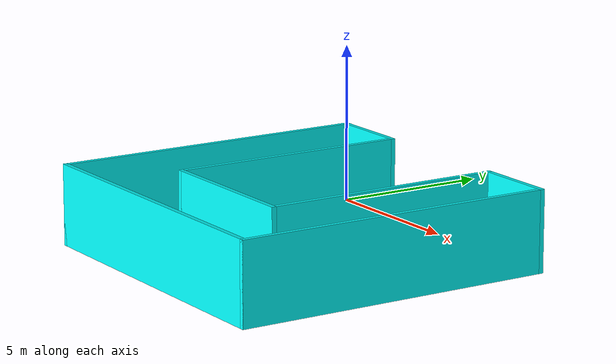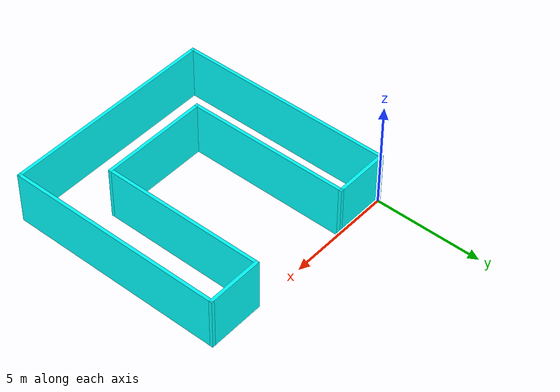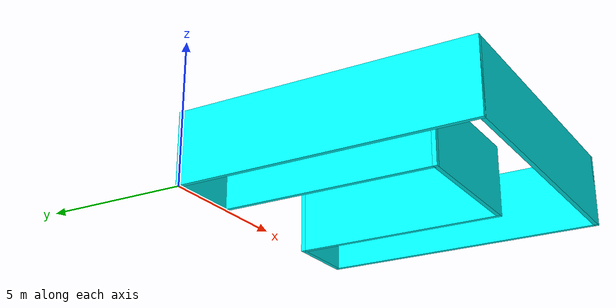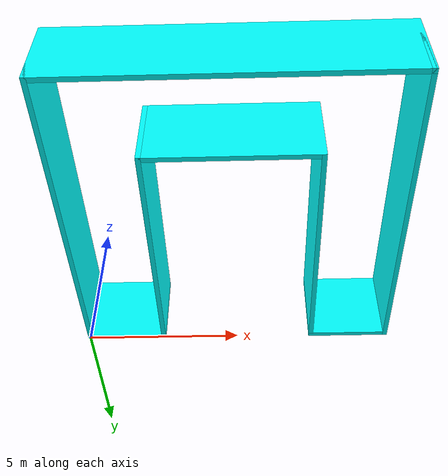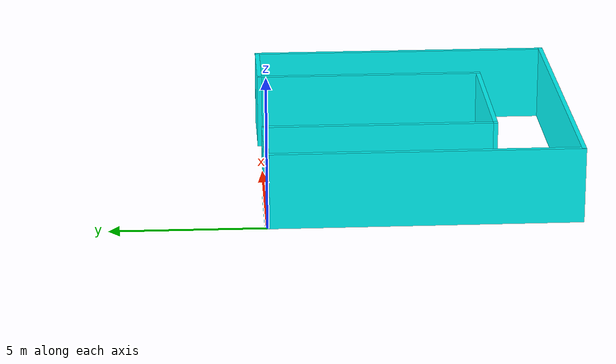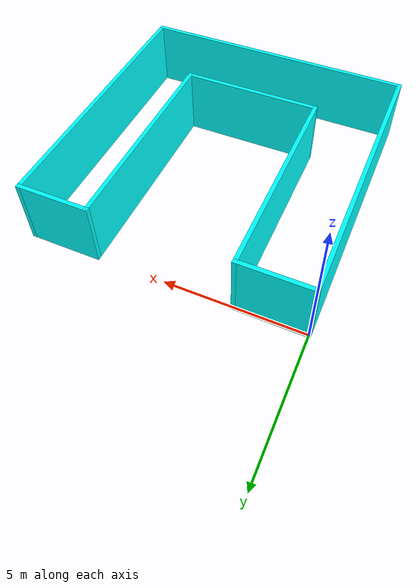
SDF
<?xml version='1.0'?>
<sdf version='1.6'>
  <model name='world'>
    <pose frame=''>5 -5 0 0 -0 0</pose>
    <link name='Wall_0'>
      <collision name='Wall_0_Collision'>
        <geometry>
          <box>
            <size>10.15 0.15 2.5</size>
          </box>
        </geometry>
        <pose frame=''>0 0 1.25 0 -0 0</pose>
      </collision>
      <visual name='Wall_0_Visual'>
        <pose frame=''>0 0 1.25 0 -0 0</pose>
        <geometry>
          <box>
            <size>10.15 0.15 2.5</size>
          </box>
        </geometry>
        <material>
          <script>
            <uri>file://media/materials/scripts/gazebo.material</uri>
            <name>Gazebo/Grey</name>
          </script>
          <ambient>0 1 1 1</ambient>
        </material>
      </visual>
      <pose frame=''>-5 0 0 0 0 -1.5708</pose>
    </link>
    <link name='Wall_2'>
      <collision name='Wall_2_Collision'>
        <geometry>
          <box>
            <size>10.15 0.15 2.5</size>
          </box>
        </geometry>
        <pose frame=''>0 0 1.25 0 -0 0</pose>
      </collision>
      <visual name='Wall_2_Visual'>
        <pose frame=''>0 0 1.25 0 -0 0</pose>
        <geometry>
          <box>
            <size>10.15 0.15 2.5</size>
          </box>
        </geometry>
        <material>
          <script>
            <uri>file://media/materials/scripts/gazebo.material</uri>
            <name>Gazebo/Grey</name>
          </script>
          <ambient>0 1 1 1</ambient>
        </material>
      </visual>
      <pose frame=''>0 -5 0 0 -0 0</pose>
    </link>
    <link name='Wall_3'>
      <collision name='Wall_3_Collision'>
        <geometry>
          <box>
            <size>10.15 0.15 2.5</size>
          </box>
        </geometry>
        <pose frame=''>0 0 1.25 0 -0 0</pose>
      </collision>
      <visual name='Wall_3_Visual'>
        <pose frame=''>0 0 1.25 0 -0 0</pose>
        <geometry>
          <box>
            <size>10.15 0.15 2.5</size>
          </box>
        </geometry>
        <material>
          <script>
            <uri>file://media/materials/scripts/gazebo.material</uri>
            <name>Gazebo/Grey</name>
          </script>
          <ambient>0 1 1 1</ambient>
        </material>
      </visual>
      <pose frame=''>5 0 0 0 -0 1.5708</pose>
    </link>
    <link name='Wall_5'>
      <collision name='Wall_5_Collision'>
        <geometry>
          <box>
            <size>2.65 0.15 2.5</size>
          </box>
        </geometry>
        <pose frame=''>0 0 1.25 0 -0 0</pose>
      </collision>
      <visual name='Wall_5_Visual'>
        <pose frame=''>0 0 1.25 0 -0 0</pose>
        <geometry>
          <box>
            <size>2.65 0.15 2.5</size>
          </box>
        </geometry>
        <material>
          <script>
            <uri>file://media/materials/scripts/gazebo.material</uri>
            <name>Gazebo/Grey</name>
          </script>
          <ambient>0 1 1 1</ambient>
        </material>
      </visual>
      <pose frame=''>3.75 5 0 0 -0 3.14159</pose>
    </link>
    <link name='Wall_6'>
      <collision name='Wall_6_Collision'>
        <geometry>
          <box>
            <size>7.65 0.15 2.5</size>
          </box>
        </geometry>
        <pose frame=''>0 0 1.25 0 -0 0</pose>
      </collision>
      <visual name='Wall_6_Visual'>
        <pose frame=''>0 0 1.25 0 -0 0</pose>
        <geometry>
          <box>
            <size>7.65 0.15 2.5</size>
          </box>
        </geometry>
        <material>
          <script>
            <uri>file://media/materials/scripts/gazebo.material</uri>
            <name>Gazebo/Grey</name>
          </script>
          <ambient>0 1 1 1</ambient>
        </material>
      </visual>
      <pose frame=''>2.5 1.25 0 0 0 -1.5708</pose>
    </link>
    <link name='Wall_7'>
      <collision name='Wall_7_Collision'>
        <geometry>
          <box>
            <size>5.15 0.15 2.5</size>
          </box>
        </geometry>
        <pose frame=''>0 0 1.25 0 -0 0</pose>
      </collision>
      <visual name='Wall_7_Visual'>
        <pose frame=''>0 0 1.25 0 -0 0</pose>
        <geometry>
          <box>
            <size>5.15 0.15 2.5</size>
          </box>
        </geometry>
        <material>
          <script>
            <uri>file://media/materials/scripts/gazebo.material</uri>
            <name>Gazebo/Grey</name>
          </script>
          <ambient>0 1 1 1</ambient>
        </material>
      </visual>
      <pose frame=''>0 -2.5 0 0 -0 3.14159</pose>
    </link>
    <link name='Wall_8'>
      <collision name='Wall_8_Collision'>
        <geometry>
          <box>
            <size>7.65 0.15 2.5</size>
          </box>
        </geometry>
        <pose frame=''>0 0 1.25 0 -0 0</pose>
      </collision>
      <visual name='Wall_8_Visual'>
        <pose frame=''>0 0 1.25 0 -0 0</pose>
        <geometry>
          <box>
            <size>7.65 0.15 2.5</size>
          </box>
        </geometry>
        <material>
          <script>
            <uri>file://media/materials/scripts/gazebo.material</uri>
            <name>Gazebo/Grey</name>
          </script>
          <ambient>0 1 1 1</ambient>
        </material>
      </visual>
      <pose frame=''>-2.5 1.25 0 0 -0 1.5708</pose>
    </link>
    <link name='Wall_9'>
      <collision name='Wall_9_Collision'>
        <geometry>
          <box>
            <size>2.65 0.15 2.5</size>
          </box>
        </geometry>
        <pose frame=''>0 0 1.25 0 -0 0</pose>
      </collision>
      <visual name='Wall_9_Visual'>
        <pose frame=''>0 0 1.25 0 -0 0</pose>
        <geometry>
          <box>
            <size>2.65 0.15 2.5</size>
          </box>
        </geometry>
        <material>
          <script>
            <uri>file://media/materials/scripts/gazebo.material</uri>
            <name>Gazebo/Grey</name>
          </script>
          <ambient>0 1 1 1</ambient>
        </material>
      </visual>
      <pose frame=''>-3.75 5 0 0 -0 3.14159</pose>
    </link>
    <static>1</static>
  </model>
</sdf>
